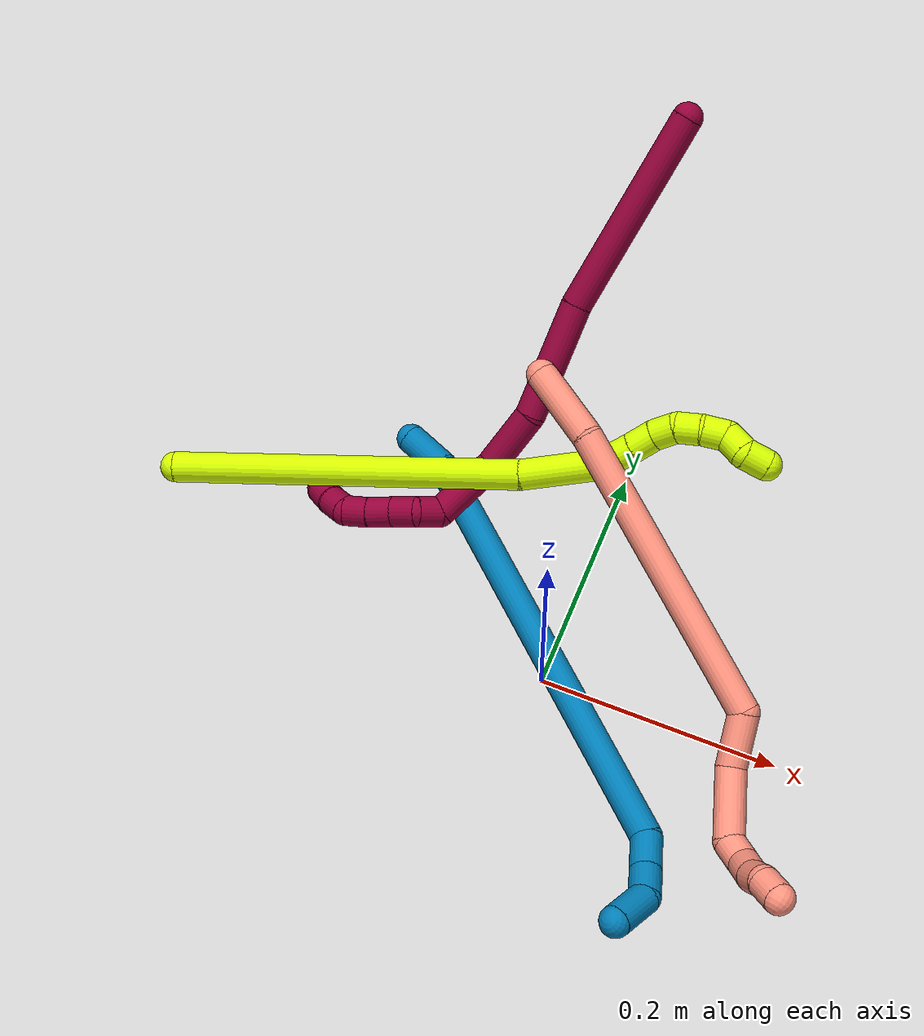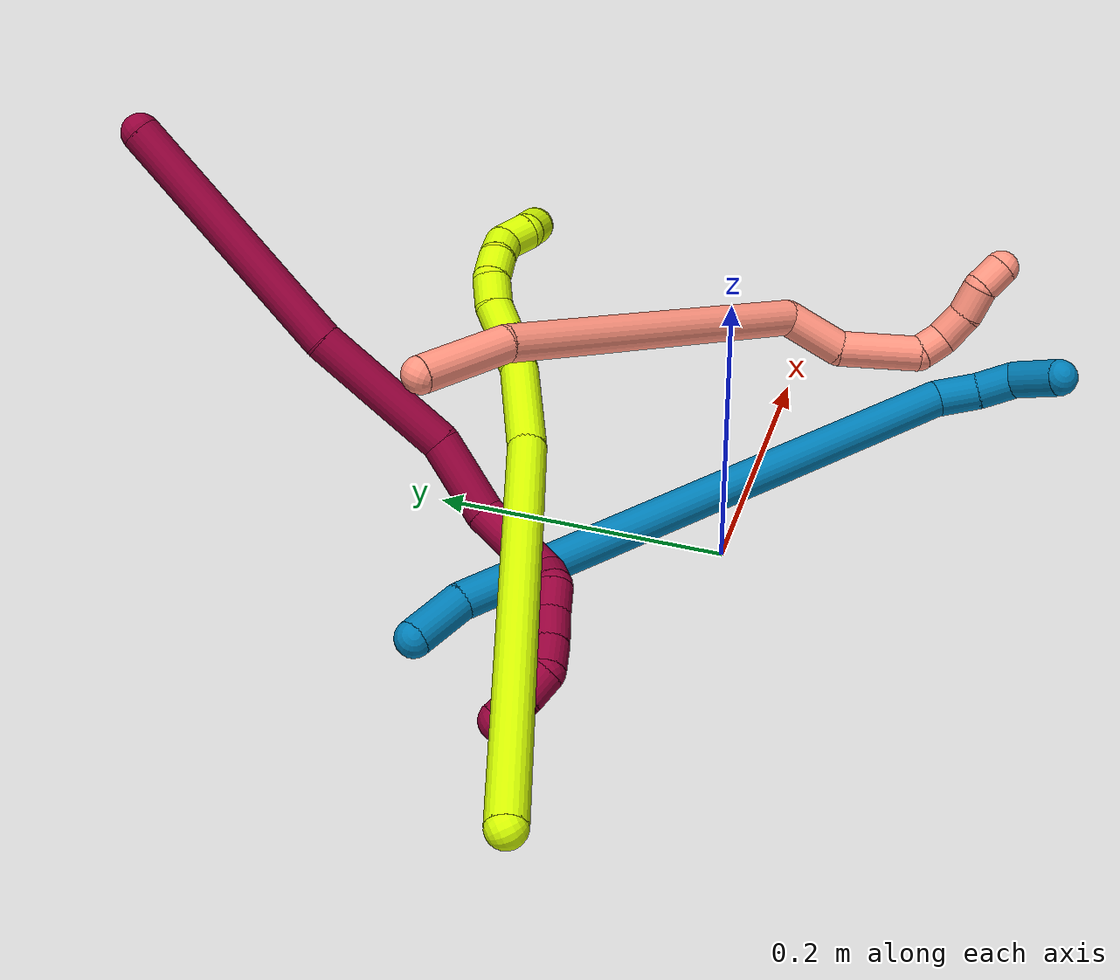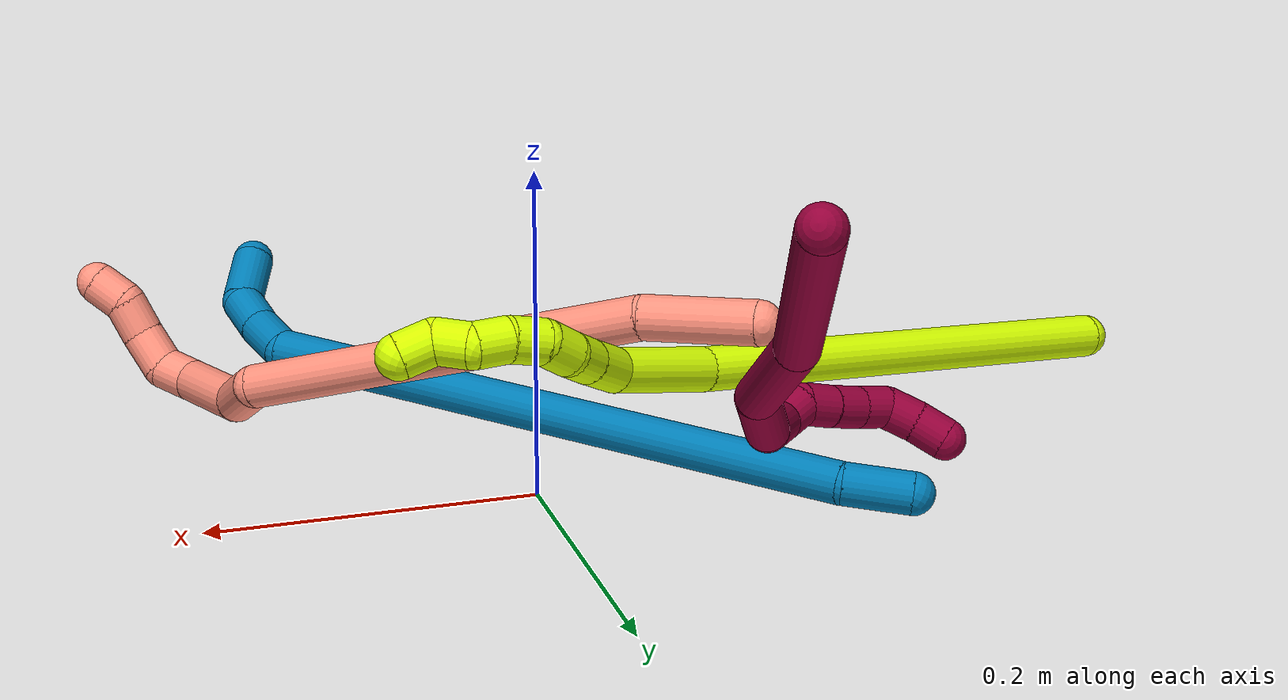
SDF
<sdf version="1.7">
 <world name="default">
  <model name="8">
   <static>0</static>
   <link name="8">
    <collision name="collision-cylinder-e_1_1_4">
     <pose>0.020083 0.002122 -0.083189 -3.11609 0.236809 -2.92803</pose>
     <geometry><cylinder><radius>0.0125</radius><length>0.17121</length></cylinder></geometry>
     <surface>
      <friction><ode><mu>1.16</mu><mu2>1.16</mu2><slip1>0</slip1><slip2>0</slip2></ode></friction>
      <contact><ode><kp>1e+06</kp><kd>1</kd><max_vel>0</max_vel><min_depth>0.001</min_depth></ode></contact>
     </surface>
    </collision>
    <visual name="visual-cylinder-e_1_1_4">
     <pose>0.020083 0.002122 -0.083189 -3.11609 0.236809 -2.92803</pose>
     <geometry><cylinder><radius>0.0125</radius><length>0.17121</length></cylinder></geometry>
     <material><ambient>0.584314 0 0.227451 1</ambient></material>
    </visual>
    <collision name="collision-cylinder-e_2_4_5">
     <pose>0.057323 0.000753 -0.21142 3.06425 0.362943 2.72595</pose>
     <geometry><cylinder><radius>0.0125</radius><length>0.096652</length></cylinder></geometry>
     <surface>
      <friction><ode><mu>1.16</mu><mu2>1.16</mu2><slip1>0</slip1><slip2>0</slip2></ode></friction>
      <contact><ode><kp>1e+06</kp><kd>1</kd><max_vel>0</max_vel><min_depth>0.001</min_depth></ode></contact>
     </surface>
    </collision>
    <visual name="visual-cylinder-e_2_4_5">
     <pose>0.057323 0.000753 -0.21142 3.06425 0.362943 2.72595</pose>
     <geometry><cylinder><radius>0.0125</radius><length>0.096652</length></cylinder></geometry>
     <material><ambient>0.584314 0 0.227451 1</ambient></material>
    </visual>
    <collision name="collision-cylinder-e_3_5_6">
     <pose>0.077858 0.001275 -0.282433 -2.98827 0.12785 -1.38954</pose>
     <geometry><cylinder><radius>0.0125</radius><length>0.052988</length></cylinder></geometry>
     <surface>
      <friction><ode><mu>1.16</mu><mu2>1.16</mu2><slip1>0</slip1><slip2>0</slip2></ode></friction>
      <contact><ode><kp>1e+06</kp><kd>1</kd><max_vel>0</max_vel><min_depth>0.001</min_depth></ode></contact>
     </surface>
    </collision>
    <visual name="visual-cylinder-e_3_5_6">
     <pose>0.077858 0.001275 -0.282433 -2.98827 0.12785 -1.38954</pose>
     <geometry><cylinder><radius>0.0125</radius><length>0.052988</length></cylinder></geometry>
     <material><ambient>0.584314 0 0.227451 1</ambient></material>
    </visual>
    <collision name="collision-cylinder-e_4_6_7">
     <pose>0.078502 -0.00077 -0.336308 2.92782 -0.095467 -0.837745</pose>
     <geometry><cylinder><radius>0.0125</radius><length>0.057373</length></cylinder></geometry>
     <surface>
      <friction><ode><mu>1.16</mu><mu2>1.16</mu2><slip1>0</slip1><slip2>0</slip2></ode></friction>
      <contact><ode><kp>1e+06</kp><kd>1</kd><max_vel>0</max_vel><min_depth>0.001</min_depth></ode></contact>
     </surface>
    </collision>
    <visual name="visual-cylinder-e_4_6_7">
     <pose>0.078502 -0.00077 -0.336308 2.92782 -0.095467 -0.837745</pose>
     <geometry><cylinder><radius>0.0125</radius><length>0.057373</length></cylinder></geometry>
     <material><ambient>0.584314 0 0.227451 1</ambient></material>
    </visual>
    <collision name="collision-cylinder-e_5_7_8">
     <pose>0.068096 -0.009508 -0.370288 2.72611 -0.857356 -2.27732</pose>
     <geometry><cylinder><radius>0.0125</radius><length>0.020291</length></cylinder></geometry>
     <surface>
      <friction><ode><mu>1.16</mu><mu2>1.16</mu2><slip1>0</slip1><slip2>0</slip2></ode></friction>
      <contact><ode><kp>1e+06</kp><kd>1</kd><max_vel>0</max_vel><min_depth>0.001</min_depth></ode></contact>
     </surface>
    </collision>
    <visual name="visual-cylinder-e_5_7_8">
     <pose>0.068096 -0.009508 -0.370288 2.72611 -0.857356 -2.27732</pose>
     <geometry><cylinder><radius>0.0125</radius><length>0.020291</length></cylinder></geometry>
     <material><ambient>0.584314 0 0.227451 1</ambient></material>
    </visual>
    <collision name="collision-cylinder-e_6_8_9">
     <pose>0.053891 -0.00884 -0.383649 -2.71092 -0.683757 2.03933</pose>
     <geometry><cylinder><radius>0.0125</radius><length>0.020686</length></cylinder></geometry>
     <surface>
      <friction><ode><mu>1.16</mu><mu2>1.16</mu2><slip1>0</slip1><slip2>0</slip2></ode></friction>
      <contact><ode><kp>1e+06</kp><kd>1</kd><max_vel>0</max_vel><min_depth>0.001</min_depth></ode></contact>
     </surface>
    </collision>
    <visual name="visual-cylinder-e_6_8_9">
     <pose>0.053891 -0.00884 -0.383649 -2.71092 -0.683757 2.03933</pose>
     <geometry><cylinder><radius>0.0125</radius><length>0.020686</length></cylinder></geometry>
     <material><ambient>0.584314 0 0.227451 1</ambient></material>
    </visual>
    <collision name="collision-cylinder-e_7_9_10">
     <pose>0.040787 -0.002731 -0.398508 -2.7919 -0.683852 2.22016</pose>
     <geometry><cylinder><radius>0.0125</radius><length>0.020798</length></cylinder></geometry>
     <surface>
      <friction><ode><mu>1.16</mu><mu2>1.16</mu2><slip1>0</slip1><slip2>0</slip2></ode></friction>
      <contact><ode><kp>1e+06</kp><kd>1</kd><max_vel>0</max_vel><min_depth>0.001</min_depth></ode></contact>
     </surface>
    </collision>
    <visual name="visual-cylinder-e_7_9_10">
     <pose>0.040787 -0.002731 -0.398508 -2.7919 -0.683852 2.22016</pose>
     <geometry><cylinder><radius>0.0125</radius><length>0.020798</length></cylinder></geometry>
     <material><ambient>0.584314 0 0.227451 1</ambient></material>
    </visual>
    <collision name="collision-cylinder-e_8_10_11">
     <pose>0.027124 0.002759 -0.41258 -2.74417 -0.788516 2.24004</pose>
     <geometry><cylinder><radius>0.0125</radius><length>0.02</length></cylinder></geometry>
     <surface>
      <friction><ode><mu>1.16</mu><mu2>1.16</mu2><slip1>0</slip1><slip2>0</slip2></ode></friction>
      <contact><ode><kp>1e+06</kp><kd>1</kd><max_vel>0</max_vel><min_depth>0.001</min_depth></ode></contact>
     </surface>
    </collision>
    <visual name="visual-cylinder-e_8_10_11">
     <pose>0.027124 0.002759 -0.41258 -2.74417 -0.788516 2.24004</pose>
     <geometry><cylinder><radius>0.0125</radius><length>0.02</length></cylinder></geometry>
     <material><ambient>0.584314 0 0.227451 1</ambient></material>
    </visual>
    <collision name="collision-cylinder-e_9_11_12">
     <pose>0.014316 0.013346 -0.42144 -1.86253 -0.608357 0.798719</pose>
     <geometry><cylinder><radius>0.0125</radius><length>0.02</length></cylinder></geometry>
     <surface>
      <friction><ode><mu>1.16</mu><mu2>1.16</mu2><slip1>0</slip1><slip2>0</slip2></ode></friction>
      <contact><ode><kp>1e+06</kp><kd>1</kd><max_vel>0</max_vel><min_depth>0.001</min_depth></ode></contact>
     </surface>
    </collision>
    <visual name="visual-cylinder-e_9_11_12">
     <pose>0.014316 0.013346 -0.42144 -1.86253 -0.608357 0.798719</pose>
     <geometry><cylinder><radius>0.0125</radius><length>0.02</length></cylinder></geometry>
     <material><ambient>0.584314 0 0.227451 1</ambient></material>
    </visual>
    <collision name="collision-cylinder-e_10_12_2">
     <pose>0.003721 0.029841 -0.425078 -1.71777 -0.50972 0.58646</pose>
     <geometry><cylinder><radius>0.0125</radius><length>0.020002</length></cylinder></geometry>
     <surface>
      <friction><ode><mu>1.16</mu><mu2>1.16</mu2><slip1>0</slip1><slip2>0</slip2></ode></friction>
      <contact><ode><kp>1e+06</kp><kd>1</kd><max_vel>0</max_vel><min_depth>0.001</min_depth></ode></contact>
     </surface>
    </collision>
    <visual name="visual-cylinder-e_10_12_2">
     <pose>0.003721 0.029841 -0.425078 -1.71777 -0.50972 0.58646</pose>
     <geometry><cylinder><radius>0.0125</radius><length>0.020002</length></cylinder></geometry>
     <material><ambient>0.584314 0 0.227451 1</ambient></material>
    </visual>
    <collision name="collision-sphere-2">
     <pose>-0.001159 0.038477 -0.426357 0 -0 0</pose>
     <geometry><sphere><radius>0.0125</radius></sphere></geometry>
     <surface>
      <friction><ode><mu>1.16</mu><mu2>1.16</mu2><slip1>0</slip1><slip2>0</slip2></ode></friction>
      <contact><ode><kp>1e+06</kp><kd>1</kd><max_vel>0</max_vel><min_depth>0.001</min_depth></ode></contact>
     </surface>
    </collision>
    <visual name="visual-sphere-2">
     <pose>-0.001159 0.038477 -0.426357 0 -0 0</pose>
     <geometry><sphere><radius>0.0125</radius></sphere></geometry>
     <material><ambient>0.584314 0 0.227451 1</ambient></material>
    </visual>
    <collision name="collision-sphere-12">
     <pose>0.008601 0.021205 -0.4238 0 -0 0</pose>
     <geometry><sphere><radius>0.0125</radius></sphere></geometry>
     <surface>
      <friction><ode><mu>1.16</mu><mu2>1.16</mu2><slip1>0</slip1><slip2>0</slip2></ode></friction>
      <contact><ode><kp>1e+06</kp><kd>1</kd><max_vel>0</max_vel><min_depth>0.001</min_depth></ode></contact>
     </surface>
    </collision>
    <visual name="visual-sphere-12">
     <pose>0.008601 0.021205 -0.4238 0 -0 0</pose>
     <geometry><sphere><radius>0.0125</radius></sphere></geometry>
     <material><ambient>0.584314 0 0.227451 1</ambient></material>
    </visual>
    <collision name="collision-sphere-11">
     <pose>0.020031 0.005487 -0.41908 0 -0 0</pose>
     <geometry><sphere><radius>0.0125</radius></sphere></geometry>
     <surface>
      <friction><ode><mu>1.16</mu><mu2>1.16</mu2><slip1>0</slip1><slip2>0</slip2></ode></friction>
      <contact><ode><kp>1e+06</kp><kd>1</kd><max_vel>0</max_vel><min_depth>0.001</min_depth></ode></contact>
     </surface>
    </collision>
    <visual name="visual-sphere-11">
     <pose>0.020031 0.005487 -0.41908 0 -0 0</pose>
     <geometry><sphere><radius>0.0125</radius></sphere></geometry>
     <material><ambient>0.584314 0 0.227451 1</ambient></material>
    </visual>
    <collision name="collision-sphere-10">
     <pose>0.034217 3e-05 -0.40608 0 -0 0</pose>
     <geometry><sphere><radius>0.0125</radius></sphere></geometry>
     <surface>
      <friction><ode><mu>1.16</mu><mu2>1.16</mu2><slip1>0</slip1><slip2>0</slip2></ode></friction>
      <contact><ode><kp>1e+06</kp><kd>1</kd><max_vel>0</max_vel><min_depth>0.001</min_depth></ode></contact>
     </surface>
    </collision>
    <visual name="visual-sphere-10">
     <pose>0.034217 3e-05 -0.40608 0 -0 0</pose>
     <geometry><sphere><radius>0.0125</radius></sphere></geometry>
     <material><ambient>0.584314 0 0.227451 1</ambient></material>
    </visual>
    <collision name="collision-sphere-9">
     <pose>0.047357 -0.005493 -0.390935 0 -0 0</pose>
     <geometry><sphere><radius>0.0125</radius></sphere></geometry>
     <surface>
      <friction><ode><mu>1.16</mu><mu2>1.16</mu2><slip1>0</slip1><slip2>0</slip2></ode></friction>
      <contact><ode><kp>1e+06</kp><kd>1</kd><max_vel>0</max_vel><min_depth>0.001</min_depth></ode></contact>
     </surface>
    </collision>
    <visual name="visual-sphere-9">
     <pose>0.047357 -0.005493 -0.390935 0 -0 0</pose>
     <geometry><sphere><radius>0.0125</radius></sphere></geometry>
     <material><ambient>0.584314 0 0.227451 1</ambient></material>
    </visual>
    <collision name="collision-sphere-4">
     <pose>0.040166 0.004244 -0.166378 0 -0 0</pose>
     <geometry><sphere><radius>0.0125</radius></sphere></geometry>
     <surface>
      <friction><ode><mu>1.16</mu><mu2>1.16</mu2><slip1>0</slip1><slip2>0</slip2></ode></friction>
      <contact><ode><kp>1e+06</kp><kd>1</kd><max_vel>0</max_vel><min_depth>0.001</min_depth></ode></contact>
     </surface>
    </collision>
    <visual name="visual-sphere-4">
     <pose>0.040166 0.004244 -0.166378 0 -0 0</pose>
     <geometry><sphere><radius>0.0125</radius></sphere></geometry>
     <material><ambient>0.584314 0 0.227451 1</ambient></material>
    </visual>
    <collision name="collision-sphere-1">
     <geometry><sphere><radius>0.0125</radius></sphere></geometry>
     <surface>
      <friction><ode><mu>1.16</mu><mu2>1.16</mu2><slip1>0</slip1><slip2>0</slip2></ode></friction>
      <contact><ode><kp>1e+06</kp><kd>1</kd><max_vel>0</max_vel><min_depth>0.001</min_depth></ode></contact>
     </surface>
    </collision>
    <visual name="visual-sphere-1">
     <geometry><sphere><radius>0.0125</radius></sphere></geometry>
     <material><ambient>0.584314 0 0.227451 1</ambient></material>
    </visual>
    <collision name="collision-sphere-8">
     <pose>0.060425 -0.012188 -0.376363 0 -0 0</pose>
     <geometry><sphere><radius>0.0125</radius></sphere></geometry>
     <surface>
      <friction><ode><mu>1.16</mu><mu2>1.16</mu2><slip1>0</slip1><slip2>0</slip2></ode></friction>
      <contact><ode><kp>1e+06</kp><kd>1</kd><max_vel>0</max_vel><min_depth>0.001</min_depth></ode></contact>
     </surface>
    </collision>
    <visual name="visual-sphere-8">
     <pose>0.060425 -0.012188 -0.376363 0 -0 0</pose>
     <geometry><sphere><radius>0.0125</radius></sphere></geometry>
     <material><ambient>0.584314 0 0.227451 1</ambient></material>
    </visual>
    <collision name="collision-sphere-5">
     <pose>0.07448 -0.002738 -0.256463 0 -0 0</pose>
     <geometry><sphere><radius>0.0125</radius></sphere></geometry>
     <surface>
      <friction><ode><mu>1.16</mu><mu2>1.16</mu2><slip1>0</slip1><slip2>0</slip2></ode></friction>
      <contact><ode><kp>1e+06</kp><kd>1</kd><max_vel>0</max_vel><min_depth>0.001</min_depth></ode></contact>
     </surface>
    </collision>
    <visual name="visual-sphere-5">
     <pose>0.07448 -0.002738 -0.256463 0 -0 0</pose>
     <geometry><sphere><radius>0.0125</radius></sphere></geometry>
     <material><ambient>0.584314 0 0.227451 1</ambient></material>
    </visual>
    <collision name="collision-sphere-6">
     <pose>0.081236 0.005288 -0.308402 0 -0 0</pose>
     <geometry><sphere><radius>0.0125</radius></sphere></geometry>
     <surface>
      <friction><ode><mu>1.16</mu><mu2>1.16</mu2><slip1>0</slip1><slip2>0</slip2></ode></friction>
      <contact><ode><kp>1e+06</kp><kd>1</kd><max_vel>0</max_vel><min_depth>0.001</min_depth></ode></contact>
     </surface>
    </collision>
    <visual name="visual-sphere-6">
     <pose>0.081236 0.005288 -0.308402 0 -0 0</pose>
     <geometry><sphere><radius>0.0125</radius></sphere></geometry>
     <material><ambient>0.584314 0 0.227451 1</ambient></material>
    </visual>
    <collision name="collision-sphere-7">
     <pose>0.075767 -0.006828 -0.364213 0 -0 0</pose>
     <geometry><sphere><radius>0.0125</radius></sphere></geometry>
     <surface>
      <friction><ode><mu>1.16</mu><mu2>1.16</mu2><slip1>0</slip1><slip2>0</slip2></ode></friction>
      <contact><ode><kp>1e+06</kp><kd>1</kd><max_vel>0</max_vel><min_depth>0.001</min_depth></ode></contact>
     </surface>
    </collision>
    <visual name="visual-sphere-7">
     <pose>0.075767 -0.006828 -0.364213 0 -0 0</pose>
     <geometry><sphere><radius>0.0125</radius></sphere></geometry>
     <material><ambient>0.584314 0 0.227451 1</ambient></material>
    </visual>
    <inertial>
     <pose>0.043713 0.001892 -0.235716 0 -0 0</pose>
     <mass>0.5</mass>
     <inertia>
      <ixx>-0.000539</ixx>
      <ixy>0</ixy>
      <ixz>0</ixz>
      <iyy>0.000401</iyy>
      <iyz>0</iyz>
      <izz>-0.000162</izz>
     </inertia>
    </inertial>
   </link>
   <pose>-0.029723 0.373963 0.276122 -0.968239 0.516783 -0.196748</pose>
  </model>
  <model name="9">
   <static>0</static>
   <link name="9">
    <collision name="collision-cylinder-e_1_1_4">
     <pose>0.013542 -0.013852 -0.005375 1.94091 0.739059 1.02969</pose>
     <geometry><cylinder><radius>0.0125</radius><length>0.040207</length></cylinder></geometry>
     <surface>
      <friction><ode><mu>1.16</mu><mu2>1.16</mu2><slip1>0</slip1><slip2>0</slip2></ode></friction>
      <contact><ode><kp>1e+06</kp><kd>1</kd><max_vel>0</max_vel><min_depth>0.001</min_depth></ode></contact>
     </surface>
    </collision>
    <visual name="visual-cylinder-e_1_1_4">
     <pose>0.013542 -0.013852 -0.005375 1.94091 0.739059 1.02969</pose>
     <geometry><cylinder><radius>0.0125</radius><length>0.040207</length></cylinder></geometry>
     <material><ambient>0 0.490196 0.709804 1</ambient></material>
    </visual>
    <collision name="collision-cylinder-e_2_4_5">
     <pose>0.113169 -0.188446 -0.035904 1.72603 0.486666 0.564742</pose>
     <geometry><cylinder><radius>0.0125</radius><length>0.368137</length></cylinder></geometry>
     <surface>
      <friction><ode><mu>1.16</mu><mu2>1.16</mu2><slip1>0</slip1><slip2>0</slip2></ode></friction>
      <contact><ode><kp>1e+06</kp><kd>1</kd><max_vel>0</max_vel><min_depth>0.001</min_depth></ode></contact>
     </surface>
    </collision>
    <visual name="visual-cylinder-e_2_4_5">
     <pose>0.113169 -0.188446 -0.035904 1.72603 0.486666 0.564742</pose>
     <geometry><cylinder><radius>0.0125</radius><length>0.368137</length></cylinder></geometry>
     <material><ambient>0 0.490196 0.709804 1</ambient></material>
    </visual>
    <collision name="collision-cylinder-e_3_5_6">
     <pose>0.201596 -0.363125 -0.056906 1.28117 0.159631 0.11911</pose>
     <geometry><cylinder><radius>0.0125</radius><length>0.029461</length></cylinder></geometry>
     <surface>
      <friction><ode><mu>1.16</mu><mu2>1.16</mu2><slip1>0</slip1><slip2>0</slip2></ode></friction>
      <contact><ode><kp>1e+06</kp><kd>1</kd><max_vel>0</max_vel><min_depth>0.001</min_depth></ode></contact>
     </surface>
    </collision>
    <visual name="visual-cylinder-e_3_5_6">
     <pose>0.201596 -0.363125 -0.056906 1.28117 0.159631 0.11911</pose>
     <geometry><cylinder><radius>0.0125</radius><length>0.029461</length></cylinder></geometry>
     <material><ambient>0 0.490196 0.709804 1</ambient></material>
    </visual>
    <collision name="collision-cylinder-e_4_6_7">
     <pose>0.206898 -0.3883 -0.047338 1.12178 0.233043 0.146798</pose>
     <geometry><cylinder><radius>0.0125</radius><length>0.025639</length></cylinder></geometry>
     <surface>
      <friction><ode><mu>1.16</mu><mu2>1.16</mu2><slip1>0</slip1><slip2>0</slip2></ode></friction>
      <contact><ode><kp>1e+06</kp><kd>1</kd><max_vel>0</max_vel><min_depth>0.001</min_depth></ode></contact>
     </surface>
    </collision>
    <visual name="visual-cylinder-e_4_6_7">
     <pose>0.206898 -0.3883 -0.047338 1.12178 0.233043 0.146798</pose>
     <geometry><cylinder><radius>0.0125</radius><length>0.025639</length></cylinder></geometry>
     <material><ambient>0 0.490196 0.709804 1</ambient></material>
    </visual>
    <collision name="collision-cylinder-e_5_7_2">
     <pose>0.206428 -0.410433 -0.027656 0.652217 -0.188813 -0.064022</pose>
     <geometry><cylinder><radius>0.0125</radius><length>0.036555</length></cylinder></geometry>
     <surface>
      <friction><ode><mu>1.16</mu><mu2>1.16</mu2><slip1>0</slip1><slip2>0</slip2></ode></friction>
      <contact><ode><kp>1e+06</kp><kd>1</kd><max_vel>0</max_vel><min_depth>0.001</min_depth></ode></contact>
     </surface>
    </collision>
    <visual name="visual-cylinder-e_5_7_2">
     <pose>0.206428 -0.410433 -0.027656 0.652217 -0.188813 -0.064022</pose>
     <geometry><cylinder><radius>0.0125</radius><length>0.036555</length></cylinder></geometry>
     <material><ambient>0 0.490196 0.709804 1</ambient></material>
    </visual>
    <collision name="collision-sphere-2">
     <pose>0.202997 -0.421329 -0.013388 0 -0 0</pose>
     <geometry><sphere><radius>0.0125</radius></sphere></geometry>
     <surface>
      <friction><ode><mu>1.16</mu><mu2>1.16</mu2><slip1>0</slip1><slip2>0</slip2></ode></friction>
      <contact><ode><kp>1e+06</kp><kd>1</kd><max_vel>0</max_vel><min_depth>0.001</min_depth></ode></contact>
     </surface>
    </collision>
    <visual name="visual-sphere-2">
     <pose>0.202997 -0.421329 -0.013388 0 -0 0</pose>
     <geometry><sphere><radius>0.0125</radius></sphere></geometry>
     <material><ambient>0 0.490196 0.709804 1</ambient></material>
    </visual>
    <collision name="collision-sphere-7">
     <pose>0.209858 -0.399536 -0.041924 0 -0 0</pose>
     <geometry><sphere><radius>0.0125</radius></sphere></geometry>
     <surface>
      <friction><ode><mu>1.16</mu><mu2>1.16</mu2><slip1>0</slip1><slip2>0</slip2></ode></friction>
      <contact><ode><kp>1e+06</kp><kd>1</kd><max_vel>0</max_vel><min_depth>0.001</min_depth></ode></contact>
     </surface>
    </collision>
    <visual name="visual-sphere-7">
     <pose>0.209858 -0.399536 -0.041924 0 -0 0</pose>
     <geometry><sphere><radius>0.0125</radius></sphere></geometry>
     <material><ambient>0 0.490196 0.709804 1</ambient></material>
    </visual>
    <collision name="collision-sphere-6">
     <pose>0.203937 -0.377063 -0.052752 0 -0 0</pose>
     <geometry><sphere><radius>0.0125</radius></sphere></geometry>
     <surface>
      <friction><ode><mu>1.16</mu><mu2>1.16</mu2><slip1>0</slip1><slip2>0</slip2></ode></friction>
      <contact><ode><kp>1e+06</kp><kd>1</kd><max_vel>0</max_vel><min_depth>0.001</min_depth></ode></contact>
     </surface>
    </collision>
    <visual name="visual-sphere-6">
     <pose>0.203937 -0.377063 -0.052752 0 -0 0</pose>
     <geometry><sphere><radius>0.0125</radius></sphere></geometry>
     <material><ambient>0 0.490196 0.709804 1</ambient></material>
    </visual>
    <collision name="collision-sphere-5">
     <pose>0.199254 -0.349188 -0.061059 0 -0 0</pose>
     <geometry><sphere><radius>0.0125</radius></sphere></geometry>
     <surface>
      <friction><ode><mu>1.16</mu><mu2>1.16</mu2><slip1>0</slip1><slip2>0</slip2></ode></friction>
      <contact><ode><kp>1e+06</kp><kd>1</kd><max_vel>0</max_vel><min_depth>0.001</min_depth></ode></contact>
     </surface>
    </collision>
    <visual name="visual-sphere-5">
     <pose>0.199254 -0.349188 -0.061059 0 -0 0</pose>
     <geometry><sphere><radius>0.0125</radius></sphere></geometry>
     <material><ambient>0 0.490196 0.709804 1</ambient></material>
    </visual>
    <collision name="collision-sphere-1">
     <geometry><sphere><radius>0.0125</radius></sphere></geometry>
     <surface>
      <friction><ode><mu>1.16</mu><mu2>1.16</mu2><slip1>0</slip1><slip2>0</slip2></ode></friction>
      <contact><ode><kp>1e+06</kp><kd>1</kd><max_vel>0</max_vel><min_depth>0.001</min_depth></ode></contact>
     </surface>
    </collision>
    <visual name="visual-sphere-1">
     <geometry><sphere><radius>0.0125</radius></sphere></geometry>
     <material><ambient>0 0.490196 0.709804 1</ambient></material>
    </visual>
    <collision name="collision-sphere-4">
     <pose>0.027083 -0.027705 -0.010749 0 -0 0</pose>
     <geometry><sphere><radius>0.0125</radius></sphere></geometry>
     <surface>
      <friction><ode><mu>1.16</mu><mu2>1.16</mu2><slip1>0</slip1><slip2>0</slip2></ode></friction>
      <contact><ode><kp>1e+06</kp><kd>1</kd><max_vel>0</max_vel><min_depth>0.001</min_depth></ode></contact>
     </surface>
    </collision>
    <visual name="visual-sphere-4">
     <pose>0.027083 -0.027705 -0.010749 0 -0 0</pose>
     <geometry><sphere><radius>0.0125</radius></sphere></geometry>
     <material><ambient>0 0.490196 0.709804 1</ambient></material>
    </visual>
    <inertial>
     <pose>0.121992 -0.211177 -0.03467 0 -0 0</pose>
     <mass>0.5</mass>
     <inertia><ixx>0.005123</ixx><ixy>0</ixy><ixz>0</ixz><iyy>0.002441</iyy><iyz>0</iyz><izz>0.0017</izz></inertia>
    </inertial>
   </link>
   <pose>-0.17713 0.150037 0.040289 0.140272 -0.608554 0.26357</pose>
  </model>
  <model name="15">
   <static>0</static>
   <link name="15">
    <collision name="collision-cylinder-e_1_1_4">
     <pose>0.129919 0.028453 0.051747 -0.502727 1.14417 -0.327743</pose>
     <geometry><cylinder><radius>0.0125</radius><length>0.28542</length></cylinder></geometry>
     <surface>
      <friction><ode><mu>1.16</mu><mu2>1.16</mu2><slip1>0</slip1><slip2>0</slip2></ode></friction>
      <contact><ode><kp>1e+06</kp><kd>1</kd><max_vel>0</max_vel><min_depth>0.001</min_depth></ode></contact>
     </surface>
    </collision>
    <visual name="visual-cylinder-e_1_1_4">
     <pose>0.129919 0.028453 0.051747 -0.502727 1.14417 -0.327743</pose>
     <geometry><cylinder><radius>0.0125</radius><length>0.28542</length></cylinder></geometry>
     <material><ambient>0.835294 1 0 1</ambient></material>
    </visual>
    <collision name="collision-cylinder-e_2_4_5">
     <pose>0.289371 0.067628 0.112767 -0.857715 1.12328 -0.560291</pose>
     <geometry><cylinder><radius>0.0125</radius><length>0.065519</length></cylinder></geometry>
     <surface>
      <friction><ode><mu>1.16</mu><mu2>1.16</mu2><slip1>0</slip1><slip2>0</slip2></ode></friction>
      <contact><ode><kp>1e+06</kp><kd>1</kd><max_vel>0</max_vel><min_depth>0.001</min_depth></ode></contact>
     </surface>
    </collision>
    <visual name="visual-cylinder-e_2_4_5">
     <pose>0.289371 0.067628 0.112767 -0.857715 1.12328 -0.560291</pose>
     <geometry><cylinder><radius>0.0125</radius><length>0.065519</length></cylinder></geometry>
     <material><ambient>0.835294 1 0 1</ambient></material>
    </visual>
    <collision name="collision-cylinder-e_3_5_6">
     <pose>0.330074 0.086932 0.123275 -1.42784 0.910686 -0.802433</pose>
     <geometry><cylinder><radius>0.0125</radius><length>0.02828</length></cylinder></geometry>
     <surface>
      <friction><ode><mu>1.16</mu><mu2>1.16</mu2><slip1>0</slip1><slip2>0</slip2></ode></friction>
      <contact><ode><kp>1e+06</kp><kd>1</kd><max_vel>0</max_vel><min_depth>0.001</min_depth></ode></contact>
     </surface>
    </collision>
    <visual name="visual-cylinder-e_3_5_6">
     <pose>0.330074 0.086932 0.123275 -1.42784 0.910686 -0.802433</pose>
     <geometry><cylinder><radius>0.0125</radius><length>0.02828</length></cylinder></geometry>
     <material><ambient>0.835294 1 0 1</ambient></material>
    </visual>
    <collision name="collision-cylinder-e_4_6_7">
     <pose>0.349205 0.102102 0.125072 -1.48586 0.877727 -0.814095</pose>
     <geometry><cylinder><radius>0.0125</radius><length>0.020698</length></cylinder></geometry>
     <surface>
      <friction><ode><mu>1.16</mu><mu2>1.16</mu2><slip1>0</slip1><slip2>0</slip2></ode></friction>
      <contact><ode><kp>1e+06</kp><kd>1</kd><max_vel>0</max_vel><min_depth>0.001</min_depth></ode></contact>
     </surface>
    </collision>
    <visual name="visual-cylinder-e_4_6_7">
     <pose>0.349205 0.102102 0.125072 -1.48586 0.877727 -0.814095</pose>
     <geometry><cylinder><radius>0.0125</radius><length>0.020698</length></cylinder></geometry>
     <material><ambient>0.835294 1 0 1</ambient></material>
    </visual>
    <collision name="collision-cylinder-e_5_7_8">
     <pose>0.364417 0.114754 0.128899 -1.07666 0.811096 -0.501967</pose>
     <geometry><cylinder><radius>0.0125</radius><length>0.02</length></cylinder></geometry>
     <surface>
      <friction><ode><mu>1.16</mu><mu2>1.16</mu2><slip1>0</slip1><slip2>0</slip2></ode></friction>
      <contact><ode><kp>1e+06</kp><kd>1</kd><max_vel>0</max_vel><min_depth>0.001</min_depth></ode></contact>
     </surface>
    </collision>
    <visual name="visual-cylinder-e_5_7_8">
     <pose>0.364417 0.114754 0.128899 -1.07666 0.811096 -0.501967</pose>
     <geometry><cylinder><radius>0.0125</radius><length>0.02</length></cylinder></geometry>
     <material><ambient>0.835294 1 0 1</ambient></material>
    </visual>
    <collision name="collision-cylinder-e_6_8_9">
     <pose>0.379973 0.123163 0.137287 -0.429488 0.974823 -0.230201</pose>
     <geometry><cylinder><radius>0.0125</radius><length>0.020071</length></cylinder></geometry>
     <surface>
      <friction><ode><mu>1.16</mu><mu2>1.16</mu2><slip1>0</slip1><slip2>0</slip2></ode></friction>
      <contact><ode><kp>1e+06</kp><kd>1</kd><max_vel>0</max_vel><min_depth>0.001</min_depth></ode></contact>
     </surface>
    </collision>
    <visual name="visual-cylinder-e_6_8_9">
     <pose>0.379973 0.123163 0.137287 -0.429488 0.974823 -0.230201</pose>
     <geometry><cylinder><radius>0.0125</radius><length>0.020071</length></cylinder></geometry>
     <material><ambient>0.835294 1 0 1</ambient></material>
    </visual>
    <collision name="collision-cylinder-e_7_9_10">
     <pose>0.397193 0.125501 0.146946 0.001679 1.09998 0.001029</pose>
     <geometry><cylinder><radius>0.0125</radius><length>0.020006</length></cylinder></geometry>
     <surface>
      <friction><ode><mu>1.16</mu><mu2>1.16</mu2><slip1>0</slip1><slip2>0</slip2></ode></friction>
      <contact><ode><kp>1e+06</kp><kd>1</kd><max_vel>0</max_vel><min_depth>0.001</min_depth></ode></contact>
     </surface>
    </collision>
    <visual name="visual-cylinder-e_7_9_10">
     <pose>0.397193 0.125501 0.146946 0.001679 1.09998 0.001029</pose>
     <geometry><cylinder><radius>0.0125</radius><length>0.020006</length></cylinder></geometry>
     <material><ambient>0.835294 1 0 1</ambient></material>
    </visual>
    <collision name="collision-cylinder-e_8_10_11">
     <pose>0.410261 0.124019 0.160462 0.162751 0.42822 0.035464</pose>
     <geometry><cylinder><radius>0.0125</radius><length>0.020005</length></cylinder></geometry>
     <surface>
      <friction><ode><mu>1.16</mu><mu2>1.16</mu2><slip1>0</slip1><slip2>0</slip2></ode></friction>
      <contact><ode><kp>1e+06</kp><kd>1</kd><max_vel>0</max_vel><min_depth>0.001</min_depth></ode></contact>
     </surface>
    </collision>
    <visual name="visual-cylinder-e_8_10_11">
     <pose>0.410261 0.124019 0.160462 0.162751 0.42822 0.035464</pose>
     <geometry><cylinder><radius>0.0125</radius><length>0.020005</length></cylinder></geometry>
     <material><ambient>0.835294 1 0 1</ambient></material>
    </visual>
    <collision name="collision-cylinder-e_9_11_2">
     <pose>0.422827 0.119438 0.173867 0.611972 0.999599 0.341636</pose>
     <geometry><cylinder><radius>0.0125</radius><length>0.020001</length></cylinder></geometry>
     <surface>
      <friction><ode><mu>1.16</mu><mu2>1.16</mu2><slip1>0</slip1><slip2>0</slip2></ode></friction>
      <contact><ode><kp>1e+06</kp><kd>1</kd><max_vel>0</max_vel><min_depth>0.001</min_depth></ode></contact>
     </surface>
    </collision>
    <visual name="visual-cylinder-e_9_11_2">
     <pose>0.422827 0.119438 0.173867 0.611972 0.999599 0.341636</pose>
     <geometry><cylinder><radius>0.0125</radius><length>0.020001</length></cylinder></geometry>
     <material><ambient>0.835294 1 0 1</ambient></material>
    </visual>
    <collision name="collision-sphere-2">
     <pose>0.43124 0.116332 0.178292 0 -0 0</pose>
     <geometry><sphere><radius>0.0125</radius></sphere></geometry>
     <surface>
      <friction><ode><mu>1.16</mu><mu2>1.16</mu2><slip1>0</slip1><slip2>0</slip2></ode></friction>
      <contact><ode><kp>1e+06</kp><kd>1</kd><max_vel>0</max_vel><min_depth>0.001</min_depth></ode></contact>
     </surface>
    </collision>
    <visual name="visual-sphere-2">
     <pose>0.43124 0.116332 0.178292 0 -0 0</pose>
     <geometry><sphere><radius>0.0125</radius></sphere></geometry>
     <material><ambient>0.835294 1 0 1</ambient></material>
    </visual>
    <collision name="collision-sphere-11">
     <pose>0.414415 0.122544 0.169441 0 -0 0</pose>
     <geometry><sphere><radius>0.0125</radius></sphere></geometry>
     <surface>
      <friction><ode><mu>1.16</mu><mu2>1.16</mu2><slip1>0</slip1><slip2>0</slip2></ode></friction>
      <contact><ode><kp>1e+06</kp><kd>1</kd><max_vel>0</max_vel><min_depth>0.001</min_depth></ode></contact>
     </surface>
    </collision>
    <visual name="visual-sphere-11">
     <pose>0.414415 0.122544 0.169441 0 -0 0</pose>
     <geometry><sphere><radius>0.0125</radius></sphere></geometry>
     <material><ambient>0.835294 1 0 1</ambient></material>
    </visual>
    <collision name="collision-sphere-10">
     <pose>0.406107 0.125493 0.151483 0 -0 0</pose>
     <geometry><sphere><radius>0.0125</radius></sphere></geometry>
     <surface>
      <friction><ode><mu>1.16</mu><mu2>1.16</mu2><slip1>0</slip1><slip2>0</slip2></ode></friction>
      <contact><ode><kp>1e+06</kp><kd>1</kd><max_vel>0</max_vel><min_depth>0.001</min_depth></ode></contact>
     </surface>
    </collision>
    <visual name="visual-sphere-10">
     <pose>0.406107 0.125493 0.151483 0 -0 0</pose>
     <geometry><sphere><radius>0.0125</radius></sphere></geometry>
     <material><ambient>0.835294 1 0 1</ambient></material>
    </visual>
    <collision name="collision-sphere-9">
     <pose>0.388278 0.125508 0.142408 0 -0 0</pose>
     <geometry><sphere><radius>0.0125</radius></sphere></geometry>
     <surface>
      <friction><ode><mu>1.16</mu><mu2>1.16</mu2><slip1>0</slip1><slip2>0</slip2></ode></friction>
      <contact><ode><kp>1e+06</kp><kd>1</kd><max_vel>0</max_vel><min_depth>0.001</min_depth></ode></contact>
     </surface>
    </collision>
    <visual name="visual-sphere-9">
     <pose>0.388278 0.125508 0.142408 0 -0 0</pose>
     <geometry><sphere><radius>0.0125</radius></sphere></geometry>
     <material><ambient>0.835294 1 0 1</ambient></material>
    </visual>
    <collision name="collision-sphere-4">
     <pose>0.259837 0.056906 0.103493 0 -0 0</pose>
     <geometry><sphere><radius>0.0125</radius></sphere></geometry>
     <surface>
      <friction><ode><mu>1.16</mu><mu2>1.16</mu2><slip1>0</slip1><slip2>0</slip2></ode></friction>
      <contact><ode><kp>1e+06</kp><kd>1</kd><max_vel>0</max_vel><min_depth>0.001</min_depth></ode></contact>
     </surface>
    </collision>
    <visual name="visual-sphere-4">
     <pose>0.259837 0.056906 0.103493 0 -0 0</pose>
     <geometry><sphere><radius>0.0125</radius></sphere></geometry>
     <material><ambient>0.835294 1 0 1</ambient></material>
    </visual>
    <collision name="collision-sphere-1">
     <geometry><sphere><radius>0.0125</radius></sphere></geometry>
     <surface>
      <friction><ode><mu>1.16</mu><mu2>1.16</mu2><slip1>0</slip1><slip2>0</slip2></ode></friction>
      <contact><ode><kp>1e+06</kp><kd>1</kd><max_vel>0</max_vel><min_depth>0.001</min_depth></ode></contact>
     </surface>
    </collision>
    <visual name="visual-sphere-1">
     <geometry><sphere><radius>0.0125</radius></sphere></geometry>
     <material><ambient>0.835294 1 0 1</ambient></material>
    </visual>
    <collision name="collision-sphere-8">
     <pose>0.371668 0.120817 0.132165 0 -0 0</pose>
     <geometry><sphere><radius>0.0125</radius></sphere></geometry>
     <surface>
      <friction><ode><mu>1.16</mu><mu2>1.16</mu2><slip1>0</slip1><slip2>0</slip2></ode></friction>
      <contact><ode><kp>1e+06</kp><kd>1</kd><max_vel>0</max_vel><min_depth>0.001</min_depth></ode></contact>
     </surface>
    </collision>
    <visual name="visual-sphere-8">
     <pose>0.371668 0.120817 0.132165 0 -0 0</pose>
     <geometry><sphere><radius>0.0125</radius></sphere></geometry>
     <material><ambient>0.835294 1 0 1</ambient></material>
    </visual>
    <collision name="collision-sphere-5">
     <pose>0.318904 0.078349 0.12204 0 -0 0</pose>
     <geometry><sphere><radius>0.0125</radius></sphere></geometry>
     <surface>
      <friction><ode><mu>1.16</mu><mu2>1.16</mu2><slip1>0</slip1><slip2>0</slip2></ode></friction>
      <contact><ode><kp>1e+06</kp><kd>1</kd><max_vel>0</max_vel><min_depth>0.001</min_depth></ode></contact>
     </surface>
    </collision>
    <visual name="visual-sphere-5">
     <pose>0.318904 0.078349 0.12204 0 -0 0</pose>
     <geometry><sphere><radius>0.0125</radius></sphere></geometry>
     <material><ambient>0.835294 1 0 1</ambient></material>
    </visual>
    <collision name="collision-sphere-6">
     <pose>0.341244 0.095514 0.124511 0 -0 0</pose>
     <geometry><sphere><radius>0.0125</radius></sphere></geometry>
     <surface>
      <friction><ode><mu>1.16</mu><mu2>1.16</mu2><slip1>0</slip1><slip2>0</slip2></ode></friction>
      <contact><ode><kp>1e+06</kp><kd>1</kd><max_vel>0</max_vel><min_depth>0.001</min_depth></ode></contact>
     </surface>
    </collision>
    <visual name="visual-sphere-6">
     <pose>0.341244 0.095514 0.124511 0 -0 0</pose>
     <geometry><sphere><radius>0.0125</radius></sphere></geometry>
     <material><ambient>0.835294 1 0 1</ambient></material>
    </visual>
    <collision name="collision-sphere-7">
     <pose>0.357167 0.108691 0.125633 0 -0 0</pose>
     <geometry><sphere><radius>0.0125</radius></sphere></geometry>
     <surface>
      <friction><ode><mu>1.16</mu><mu2>1.16</mu2><slip1>0</slip1><slip2>0</slip2></ode></friction>
      <contact><ode><kp>1e+06</kp><kd>1</kd><max_vel>0</max_vel><min_depth>0.001</min_depth></ode></contact>
     </surface>
    </collision>
    <visual name="visual-sphere-7">
     <pose>0.357167 0.108691 0.125633 0 -0 0</pose>
     <geometry><sphere><radius>0.0125</radius></sphere></geometry>
     <material><ambient>0.835294 1 0 1</ambient></material>
    </visual>
    <inertial>
     <pose>0.224256 0.058543 0.086387 0 -0 0</pose>
     <mass>0.5</mass>
     <inertia>
      <ixx>0.000545</ixx>
      <ixy>0</ixy>
      <ixz>0</ixz>
      <iyy>0.001667</iyy>
      <iyz>0</iyz>
      <izz>-0.002193</izz>
     </inertia>
    </inertial>
   </link>
   <pose>-0.336476 0.033362 0.077257 1.27507 0.182726 0.580841</pose>
  </model>
  <model name="16">
   <static>0</static>
   <link name="16">
    <collision name="collision-cylinder-e_1_1_4">
     <pose>0.018309 -0.023061 -0.013359 2.09587 0.601949 0.988023</pose>
     <geometry><cylinder><radius>0.0125</radius><length>0.064668</length></cylinder></geometry>
     <surface>
      <friction><ode><mu>1.16</mu><mu2>1.16</mu2><slip1>0</slip1><slip2>0</slip2></ode></friction>
      <contact><ode><kp>1e+06</kp><kd>1</kd><max_vel>0</max_vel><min_depth>0.001</min_depth></ode></contact>
     </surface>
    </collision>
    <visual name="visual-cylinder-e_1_1_4">
     <pose>0.018309 -0.023061 -0.013359 2.09587 0.601949 0.988023</pose>
     <geometry><cylinder><radius>0.0125</radius><length>0.064668</length></cylinder></geometry>
     <material><ambient>1 0.576471 0.494118 1</ambient></material>
    </visual>
    <collision name="collision-cylinder-e_2_4_5">
     <pose>0.122708 -0.11127 -0.085043 2.30098 0.777601 1.48379</pose>
     <geometry><cylinder><radius>0.0125</radius><length>0.245418</length></cylinder></geometry>
     <surface>
      <friction><ode><mu>1.16</mu><mu2>1.16</mu2><slip1>0</slip1><slip2>0</slip2></ode></friction>
      <contact><ode><kp>1e+06</kp><kd>1</kd><max_vel>0</max_vel><min_depth>0.001</min_depth></ode></contact>
     </surface>
    </collision>
    <visual name="visual-cylinder-e_2_4_5">
     <pose>0.122708 -0.11127 -0.085043 2.30098 0.777601 1.48379</pose>
     <geometry><cylinder><radius>0.0125</radius><length>0.245418</length></cylinder></geometry>
     <material><ambient>1 0.576471 0.494118 1</ambient></material>
    </visual>
    <collision name="collision-cylinder-e_3_5_6">
     <pose>0.218474 -0.17618 -0.163173 -3.1295 0.454475 -3.08931</pose>
     <geometry><cylinder><radius>0.0125</radius><length>0.044089</length></cylinder></geometry>
     <surface>
      <friction><ode><mu>1.16</mu><mu2>1.16</mu2><slip1>0</slip1><slip2>0</slip2></ode></friction>
      <contact><ode><kp>1e+06</kp><kd>1</kd><max_vel>0</max_vel><min_depth>0.001</min_depth></ode></contact>
     </surface>
    </collision>
    <visual name="visual-cylinder-e_3_5_6">
     <pose>0.218474 -0.17618 -0.163173 -3.1295 0.454475 -3.08931</pose>
     <geometry><cylinder><radius>0.0125</radius><length>0.044089</length></cylinder></geometry>
     <material><ambient>1 0.576471 0.494118 1</ambient></material>
    </visual>
    <collision name="collision-cylinder-e_4_6_7">
     <pose>0.235383 -0.188012 -0.208224 2.69559 0.252882 1.02183</pose>
     <geometry><cylinder><radius>0.0125</radius><length>0.057806</length></cylinder></geometry>
     <surface>
      <friction><ode><mu>1.16</mu><mu2>1.16</mu2><slip1>0</slip1><slip2>0</slip2></ode></friction>
      <contact><ode><kp>1e+06</kp><kd>1</kd><max_vel>0</max_vel><min_depth>0.001</min_depth></ode></contact>
     </surface>
    </collision>
    <visual name="visual-cylinder-e_4_6_7">
     <pose>0.235383 -0.188012 -0.208224 2.69559 0.252882 1.02183</pose>
     <geometry><cylinder><radius>0.0125</radius><length>0.057806</length></cylinder></geometry>
     <material><ambient>1 0.576471 0.494118 1</ambient></material>
    </visual>
    <collision name="collision-cylinder-e_5_7_8">
     <pose>0.245391 -0.209132 -0.237892 2.02525 0.269032 0.426877</pose>
     <geometry><cylinder><radius>0.0125</radius><length>0.020894</length></cylinder></geometry>
     <surface>
      <friction><ode><mu>1.16</mu><mu2>1.16</mu2><slip1>0</slip1><slip2>0</slip2></ode></friction>
      <contact><ode><kp>1e+06</kp><kd>1</kd><max_vel>0</max_vel><min_depth>0.001</min_depth></ode></contact>
     </surface>
    </collision>
    <visual name="visual-cylinder-e_5_7_8">
     <pose>0.245391 -0.209132 -0.237892 2.02525 0.269032 0.426877</pose>
     <geometry><cylinder><radius>0.0125</radius><length>0.020894</length></cylinder></geometry>
     <material><ambient>1 0.576471 0.494118 1</ambient></material>
    </visual>
    <collision name="collision-cylinder-e_6_8_9">
     <pose>0.244602 -0.228855 -0.246422 1.93827 -0.302232 -0.436516</pose>
     <geometry><cylinder><radius>0.0125</radius><length>0.023962</length></cylinder></geometry>
     <surface>
      <friction><ode><mu>1.16</mu><mu2>1.16</mu2><slip1>0</slip1><slip2>0</slip2></ode></friction>
      <contact><ode><kp>1e+06</kp><kd>1</kd><max_vel>0</max_vel><min_depth>0.001</min_depth></ode></contact>
     </surface>
    </collision>
    <visual name="visual-cylinder-e_6_8_9">
     <pose>0.244602 -0.228855 -0.246422 1.93827 -0.302232 -0.436516</pose>
     <geometry><cylinder><radius>0.0125</radius><length>0.023962</length></cylinder></geometry>
     <material><ambient>1 0.576471 0.494118 1</ambient></material>
    </visual>
    <collision name="collision-cylinder-e_7_9_10">
     <pose>0.236605 -0.249581 -0.251643 1.68094 -0.412928 -0.459519</pose>
     <geometry><cylinder><radius>0.0125</radius><length>0.022082</length></cylinder></geometry>
     <surface>
      <friction><ode><mu>1.16</mu><mu2>1.16</mu2><slip1>0</slip1><slip2>0</slip2></ode></friction>
      <contact><ode><kp>1e+06</kp><kd>1</kd><max_vel>0</max_vel><min_depth>0.001</min_depth></ode></contact>
     </surface>
    </collision>
    <visual name="visual-cylinder-e_7_9_10">
     <pose>0.236605 -0.249581 -0.251643 1.68094 -0.412928 -0.459519</pose>
     <geometry><cylinder><radius>0.0125</radius><length>0.022082</length></cylinder></geometry>
     <material><ambient>1 0.576471 0.494118 1</ambient></material>
    </visual>
    <collision name="collision-cylinder-e_8_10_2">
     <pose>0.232827 -0.269606 -0.256104 1.89478 0.061991 0.086185</pose>
     <geometry><cylinder><radius>0.0125</radius><length>0.021082</length></cylinder></geometry>
     <surface>
      <friction><ode><mu>1.16</mu><mu2>1.16</mu2><slip1>0</slip1><slip2>0</slip2></ode></friction>
      <contact><ode><kp>1e+06</kp><kd>1</kd><max_vel>0</max_vel><min_depth>0.001</min_depth></ode></contact>
     </surface>
    </collision>
    <visual name="visual-cylinder-e_8_10_2">
     <pose>0.232827 -0.269606 -0.256104 1.89478 0.061991 0.086185</pose>
     <geometry><cylinder><radius>0.0125</radius><length>0.021082</length></cylinder></geometry>
     <material><ambient>1 0.576471 0.494118 1</ambient></material>
    </visual>
    <collision name="collision-sphere-2">
     <pose>0.23348 -0.279579 -0.259453 0 -0 0</pose>
     <geometry><sphere><radius>0.0125</radius></sphere></geometry>
     <surface>
      <friction><ode><mu>1.16</mu><mu2>1.16</mu2><slip1>0</slip1><slip2>0</slip2></ode></friction>
      <contact><ode><kp>1e+06</kp><kd>1</kd><max_vel>0</max_vel><min_depth>0.001</min_depth></ode></contact>
     </surface>
    </collision>
    <visual name="visual-sphere-2">
     <pose>0.23348 -0.279579 -0.259453 0 -0 0</pose>
     <geometry><sphere><radius>0.0125</radius></sphere></geometry>
     <material><ambient>1 0.576471 0.494118 1</ambient></material>
    </visual>
    <collision name="collision-sphere-10">
     <pose>0.232174 -0.259632 -0.252754 0 -0 0</pose>
     <geometry><sphere><radius>0.0125</radius></sphere></geometry>
     <surface>
      <friction><ode><mu>1.16</mu><mu2>1.16</mu2><slip1>0</slip1><slip2>0</slip2></ode></friction>
      <contact><ode><kp>1e+06</kp><kd>1</kd><max_vel>0</max_vel><min_depth>0.001</min_depth></ode></contact>
     </surface>
    </collision>
    <visual name="visual-sphere-10">
     <pose>0.232174 -0.259632 -0.252754 0 -0 0</pose>
     <geometry><sphere><radius>0.0125</radius></sphere></geometry>
     <material><ambient>1 0.576471 0.494118 1</ambient></material>
    </visual>
    <collision name="collision-sphere-9">
     <pose>0.241035 -0.239529 -0.250531 0 -0 0</pose>
     <geometry><sphere><radius>0.0125</radius></sphere></geometry>
     <surface>
      <friction><ode><mu>1.16</mu><mu2>1.16</mu2><slip1>0</slip1><slip2>0</slip2></ode></friction>
      <contact><ode><kp>1e+06</kp><kd>1</kd><max_vel>0</max_vel><min_depth>0.001</min_depth></ode></contact>
     </surface>
    </collision>
    <visual name="visual-sphere-9">
     <pose>0.241035 -0.239529 -0.250531 0 -0 0</pose>
     <geometry><sphere><radius>0.0125</radius></sphere></geometry>
     <material><ambient>1 0.576471 0.494118 1</ambient></material>
    </visual>
    <collision name="collision-sphere-4">
     <pose>0.036618 -0.046121 -0.026719 0 -0 0</pose>
     <geometry><sphere><radius>0.0125</radius></sphere></geometry>
     <surface>
      <friction><ode><mu>1.16</mu><mu2>1.16</mu2><slip1>0</slip1><slip2>0</slip2></ode></friction>
      <contact><ode><kp>1e+06</kp><kd>1</kd><max_vel>0</max_vel><min_depth>0.001</min_depth></ode></contact>
     </surface>
    </collision>
    <visual name="visual-sphere-4">
     <pose>0.036618 -0.046121 -0.026719 0 -0 0</pose>
     <geometry><sphere><radius>0.0125</radius></sphere></geometry>
     <material><ambient>1 0.576471 0.494118 1</ambient></material>
    </visual>
    <collision name="collision-sphere-1">
     <geometry><sphere><radius>0.0125</radius></sphere></geometry>
     <surface>
      <friction><ode><mu>1.16</mu><mu2>1.16</mu2><slip1>0</slip1><slip2>0</slip2></ode></friction>
      <contact><ode><kp>1e+06</kp><kd>1</kd><max_vel>0</max_vel><min_depth>0.001</min_depth></ode></contact>
     </surface>
    </collision>
    <visual name="visual-sphere-1">
     <geometry><sphere><radius>0.0125</radius></sphere></geometry>
     <material><ambient>1 0.576471 0.494118 1</ambient></material>
    </visual>
    <collision name="collision-sphere-8">
     <pose>0.248168 -0.218181 -0.242313 0 -0 0</pose>
     <geometry><sphere><radius>0.0125</radius></sphere></geometry>
     <surface>
      <friction><ode><mu>1.16</mu><mu2>1.16</mu2><slip1>0</slip1><slip2>0</slip2></ode></friction>
      <contact><ode><kp>1e+06</kp><kd>1</kd><max_vel>0</max_vel><min_depth>0.001</min_depth></ode></contact>
     </surface>
    </collision>
    <visual name="visual-sphere-8">
     <pose>0.248168 -0.218181 -0.242313 0 -0 0</pose>
     <geometry><sphere><radius>0.0125</radius></sphere></geometry>
     <material><ambient>1 0.576471 0.494118 1</ambient></material>
    </visual>
    <collision name="collision-sphere-5">
     <pose>0.208797 -0.17642 -0.143368 0 -0 0</pose>
     <geometry><sphere><radius>0.0125</radius></sphere></geometry>
     <surface>
      <friction><ode><mu>1.16</mu><mu2>1.16</mu2><slip1>0</slip1><slip2>0</slip2></ode></friction>
      <contact><ode><kp>1e+06</kp><kd>1</kd><max_vel>0</max_vel><min_depth>0.001</min_depth></ode></contact>
     </surface>
    </collision>
    <visual name="visual-sphere-5">
     <pose>0.208797 -0.17642 -0.143368 0 -0 0</pose>
     <geometry><sphere><radius>0.0125</radius></sphere></geometry>
     <material><ambient>1 0.576471 0.494118 1</ambient></material>
    </visual>
    <collision name="collision-sphere-6">
     <pose>0.228151 -0.175941 -0.182978 0 -0 0</pose>
     <geometry><sphere><radius>0.0125</radius></sphere></geometry>
     <surface>
      <friction><ode><mu>1.16</mu><mu2>1.16</mu2><slip1>0</slip1><slip2>0</slip2></ode></friction>
      <contact><ode><kp>1e+06</kp><kd>1</kd><max_vel>0</max_vel><min_depth>0.001</min_depth></ode></contact>
     </surface>
    </collision>
    <visual name="visual-sphere-6">
     <pose>0.228151 -0.175941 -0.182978 0 -0 0</pose>
     <geometry><sphere><radius>0.0125</radius></sphere></geometry>
     <material><ambient>1 0.576471 0.494118 1</ambient></material>
    </visual>
    <collision name="collision-sphere-7">
     <pose>0.242614 -0.200083 -0.233471 0 -0 0</pose>
     <geometry><sphere><radius>0.0125</radius></sphere></geometry>
     <surface>
      <friction><ode><mu>1.16</mu><mu2>1.16</mu2><slip1>0</slip1><slip2>0</slip2></ode></friction>
      <contact><ode><kp>1e+06</kp><kd>1</kd><max_vel>0</max_vel><min_depth>0.001</min_depth></ode></contact>
     </surface>
    </collision>
    <visual name="visual-sphere-7">
     <pose>0.242614 -0.200083 -0.233471 0 -0 0</pose>
     <geometry><sphere><radius>0.0125</radius></sphere></geometry>
     <material><ambient>1 0.576471 0.494118 1</ambient></material>
    </visual>
    <inertial>
     <pose>0.151317 -0.136966 -0.125594 0 -0 0</pose>
     <mass>0.5</mass>
     <inertia>
      <ixx>0.001026</ixx>
      <ixy>0</ixy>
      <ixz>0</ixz>
      <iyy>0.001469</iyy>
      <iyz>0</iyz>
      <izz>-0.000222</izz>
     </inertia>
    </inertial>
   </link>
   <pose>-0.073039 0.178519 0.161594 -1.28557 0.865699 0.026296</pose>
  </model>
 </world>
</sdf>
